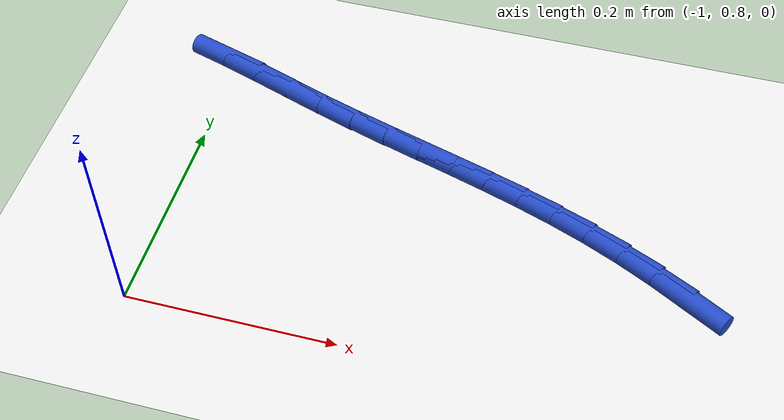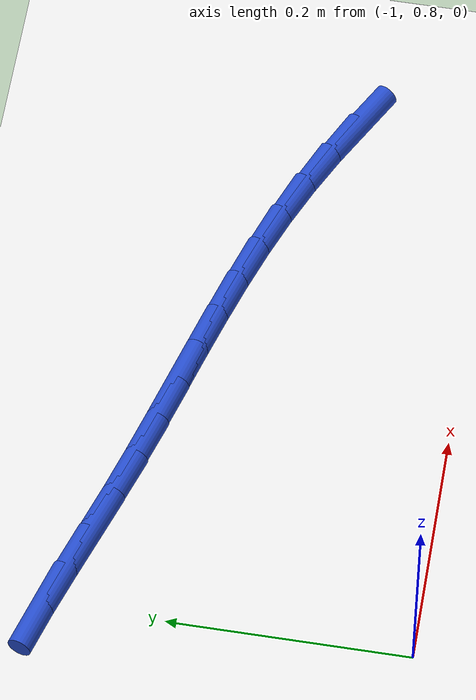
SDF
<sdf version="1.6">
 <world name="default">
  <model name="ground_plane">
   <static>1</static>
   <link name="link">
    <collision name="collision">
     <geometry><plane><normal>0 0 1</normal><size>100 100</size></plane></geometry>
     <surface><friction><ode><mu>100</mu><mu2>50</mu2></ode></friction></surface>
    </collision>
    <visual name="visual">
     <cast_shadows>0</cast_shadows>
     <geometry><plane><normal>0 0 1</normal><size>100 100</size></plane></geometry>
     <material>
      <script><uri>file://media/materials/scripts/gazebo.material</uri><name>Gazebo/WhiteGlow</name></script>
     </material>
    </visual>
   </link>
  </model>
  <model name="line">
   <link name="link_29">
    <pose>-0.5103159540214676 0.919163056793228 0.01 0 1.57 -0.5040532559833172</pose>
    <collision name="collision">
     <geometry><cylinder><radius>0.01</radius><length>0.08</length></cylinder></geometry>
    </collision>
    <visual name="visual">
     <material>
      <script><name>Gazebo/Blue</name><uri>file://media/materials/scripts/gazebo.material</uri></script>
     </material>
     <geometry><cylinder><radius>0.01</radius><length>0.08</length></cylinder></geometry>
    </visual>
   </link>
   <link name="link_30">
    <pose>-0.5432030397407889 0.9373028212824126 0.01 0 1.57 -0.46029735492171425</pose>
    <collision name="collision">
     <geometry><cylinder><radius>0.01</radius><length>0.08</length></cylinder></geometry>
    </collision>
    <visual name="visual">
     <material>
      <script><name>Gazebo/Blue</name><uri>file://media/materials/scripts/gazebo.material</uri></script>
     </material>
     <geometry><cylinder><radius>0.01</radius><length>0.08</length></cylinder></geometry>
    </visual>
   </link>
   <link name="link_31">
    <pose>-0.5766622067733229 0.9538925177153991 0.01 0 1.57 -0.41520308218590973</pose>
    <collision name="collision">
     <geometry><cylinder><radius>0.01</radius><length>0.08</length></cylinder></geometry>
    </collision>
    <visual name="visual">
     <material>
      <script><name>Gazebo/Blue</name><uri>file://media/materials/scripts/gazebo.material</uri></script>
     </material>
     <geometry><cylinder><radius>0.01</radius><length>0.08</length></cylinder></geometry>
    </visual>
   </link>
   <link name="link_32">
    <pose>-0.6106256139430398 0.9688646488899402 0.01 0 1.57 -0.3721206774624496</pose>
    <collision name="collision">
     <geometry><cylinder><radius>0.01</radius><length>0.08</length></cylinder></geometry>
    </collision>
    <visual name="visual">
     <material>
      <script><name>Gazebo/Blue</name><uri>file://media/materials/scripts/gazebo.material</uri></script>
     </material>
     <geometry><cylinder><radius>0.01</radius><length>0.08</length></cylinder></geometry>
    </visual>
   </link>
   <link name="link_33">
    <pose>-0.6450434374206725 0.9822980933967411 0.01 0 1.57 -0.3367176333923286</pose>
    <collision name="collision">
     <geometry><cylinder><radius>0.01</radius><length>0.08</length></cylinder></geometry>
    </collision>
    <visual name="visual">
     <material>
      <script><name>Gazebo/Blue</name><uri>file://media/materials/scripts/gazebo.material</uri></script>
     </material>
     <geometry><cylinder><radius>0.01</radius><length>0.08</length></cylinder></geometry>
    </visual>
   </link>
   <link name="link_34">
    <pose>-0.6798936228155037 0.9944973331653777 0.01 0 1.57 -0.30982278114631934</pose>
    <collision name="collision">
     <geometry><cylinder><radius>0.01</radius><length>0.08</length></cylinder></geometry>
    </collision>
    <visual name="visual">
     <material>
      <script><name>Gazebo/Blue</name><uri>file://media/materials/scripts/gazebo.material</uri></script>
     </material>
     <geometry><cylinder><radius>0.01</radius><length>0.08</length></cylinder></geometry>
    </visual>
   </link>
   <link name="link_35">
    <pose>-0.7151564861978593 1.005786108128249 0.01 0 1.57 -0.2915929750230903</pose>
    <collision name="collision">
     <geometry><cylinder><radius>0.01</radius><length>0.08</length></cylinder></geometry>
    </collision>
    <visual name="visual">
     <material>
      <script><name>Gazebo/Blue</name><uri>file://media/materials/scripts/gazebo.material</uri></script>
     </material>
     <geometry><cylinder><radius>0.01</radius><length>0.08</length></cylinder></geometry>
    </visual>
   </link>
   <link name="link_36">
    <pose>-0.7508123436380649 1.016488158217755 0.01 0 1.57 -0.28201691279708313</pose>
    <collision name="collision">
     <geometry><cylinder><radius>0.01</radius><length>0.08</length></cylinder></geometry>
    </collision>
    <visual name="visual">
     <material>
      <script><name>Gazebo/Blue</name><uri>file://media/materials/scripts/gazebo.material</uri></script>
     </material>
     <geometry><cylinder><radius>0.01</radius><length>0.08</length></cylinder></geometry>
    </visual>
   </link>
   <link name="link_37">
    <pose>-0.7868415112064465 1.0269272233662947 0.01 0 1.57 -0.2809590969551456</pose>
    <collision name="collision">
     <geometry><cylinder><radius>0.01</radius><length>0.08</length></cylinder></geometry>
    </collision>
    <visual name="visual">
     <material>
      <script><name>Gazebo/Blue</name><uri>file://media/materials/scripts/gazebo.material</uri></script>
     </material>
     <geometry><cylinder><radius>0.01</radius><length>0.08</length></cylinder></geometry>
    </visual>
   </link>
   <link name="link_38">
    <pose>-0.8232243049733294 1.0374270435062667 0.01 0 1.57 -0.28818769384749265</pose>
    <collision name="collision">
     <geometry><cylinder><radius>0.01</radius><length>0.08</length></cylinder></geometry>
    </collision>
    <visual name="visual">
     <material>
      <script><name>Gazebo/Blue</name><uri>file://media/materials/scripts/gazebo.material</uri></script>
     </material>
     <geometry><cylinder><radius>0.01</radius><length>0.08</length></cylinder></geometry>
    </visual>
   </link>
   <link name="link_39">
    <pose>-0.8599410410090392 1.0483113585700705 0.01 0 1.57 -0.30338578694096824</pose>
    <collision name="collision">
     <geometry><cylinder><radius>0.01</radius><length>0.08</length></cylinder></geometry>
    </collision>
    <visual name="visual">
     <material>
      <script><name>Gazebo/Blue</name><uri>file://media/materials/scripts/gazebo.material</uri></script>
     </material>
     <geometry><cylinder><radius>0.01</radius><length>0.08</length></cylinder></geometry>
    </visual>
   </link>
   <link name="link_40">
    <pose>-0.8969720353839028 1.0599039084901065 0.01 0 1.57 -0.3231190863596062</pose>
    <collision name="collision">
     <geometry><cylinder><radius>0.01</radius><length>0.08</length></cylinder></geometry>
    </collision>
    <visual name="visual">
     <material>
      <script><name>Gazebo/Blue</name><uri>file://media/materials/scripts/gazebo.material</uri></script>
     </material>
     <geometry><cylinder><radius>0.01</radius><length>0.08</length></cylinder></geometry>
    </visual>
   </link>
   <link name="link_41">
    <pose>-0.9342801258253346 1.0723966949127712 0.01 0 1.57 -0.33053541534569847</pose>
    <collision name="collision">
     <geometry><cylinder><radius>0.01</radius><length>0.08</length></cylinder></geometry>
    </collision>
    <visual name="visual">
     <material>
      <script><name>Gazebo/Blue</name><uri>file://media/materials/scripts/gazebo.material</uri></script>
     </material>
     <geometry><cylinder><radius>0.01</radius><length>0.08</length></cylinder></geometry>
    </visual>
   </link>
   <link name="link_42">
    <pose>-0.9717306499767384 1.0852468389515075 0.01 0 1.57 -0.3201882021681557</pose>
    <collision name="collision">
     <geometry><cylinder><radius>0.01</radius><length>0.08</length></cylinder></geometry>
    </collision>
    <visual name="visual">
     <material>
      <script><name>Gazebo/Blue</name><uri>file://media/materials/scripts/gazebo.material</uri></script>
     </material>
     <geometry><cylinder><radius>0.01</radius><length>0.08</length></cylinder></geometry>
    </visual>
   </link>
   <link name="link_43">
    <pose>-1.0091551502357876 1.097656739188548 0.01 0 1.57 -0.2915260342607785</pose>
    <collision name="collision">
     <geometry><cylinder><radius>0.01</radius><length>0.08</length></cylinder></geometry>
    </collision>
    <visual name="visual">
     <material>
      <script><name>Gazebo/Blue</name><uri>file://media/materials/scripts/gazebo.material</uri></script>
     </material>
     <geometry><cylinder><radius>0.01</radius><length>0.08</length></cylinder></geometry>
    </visual>
   </link>
  </model>
 </world>
</sdf>
